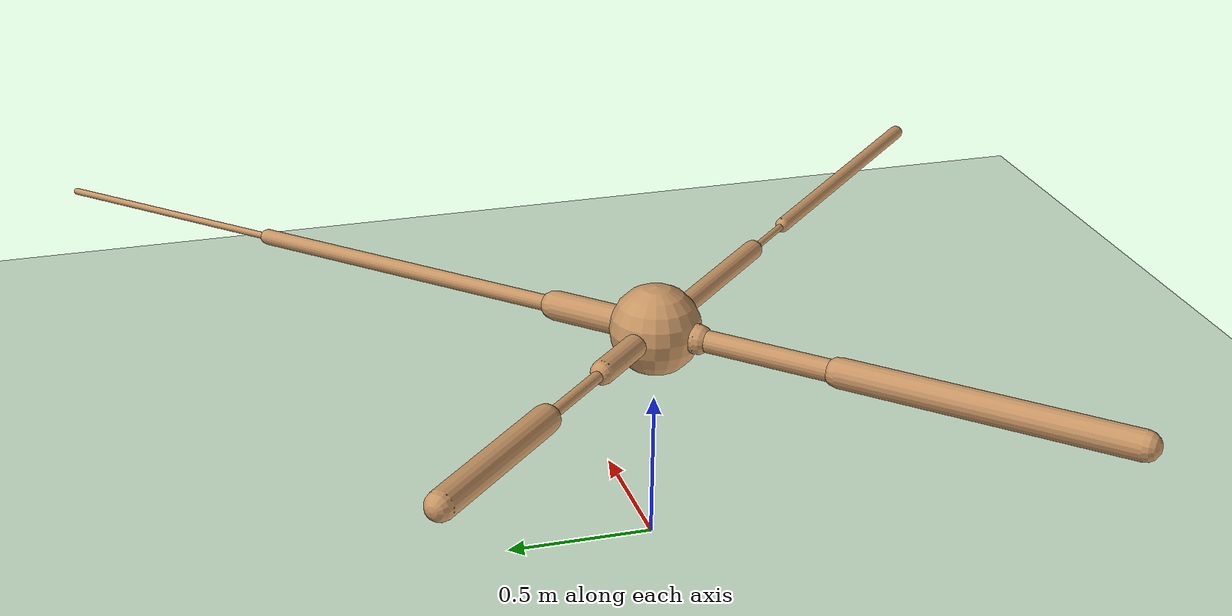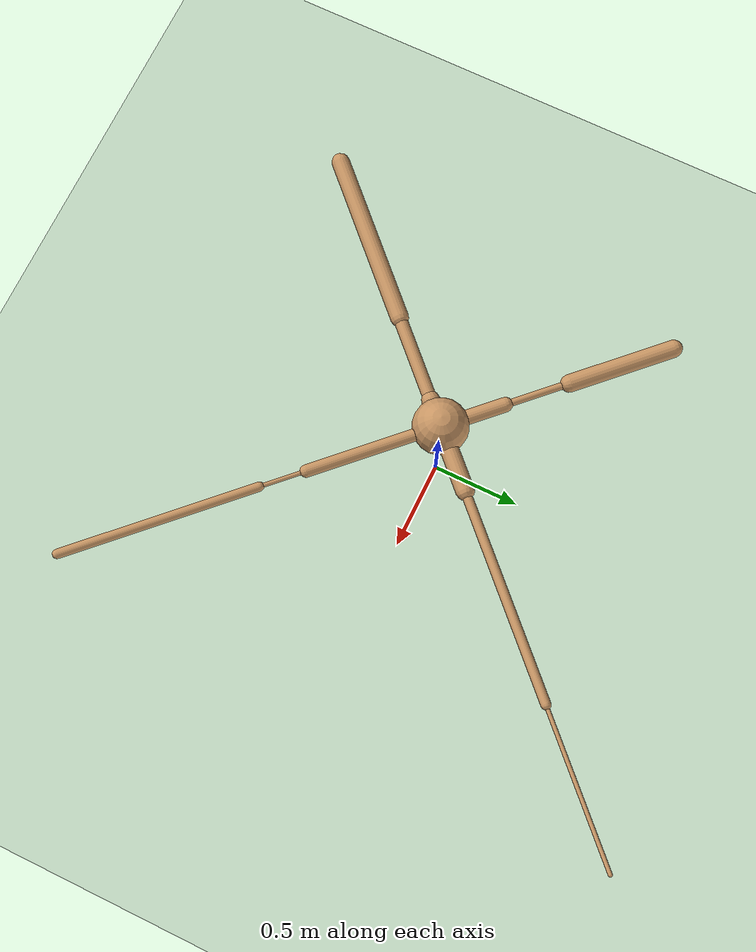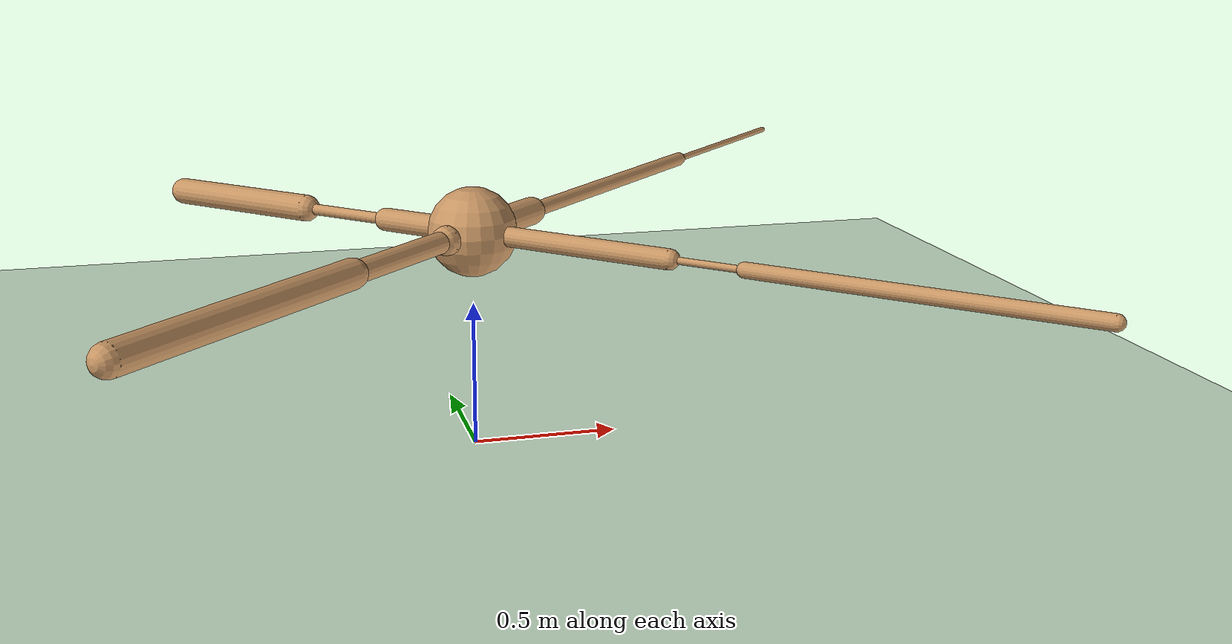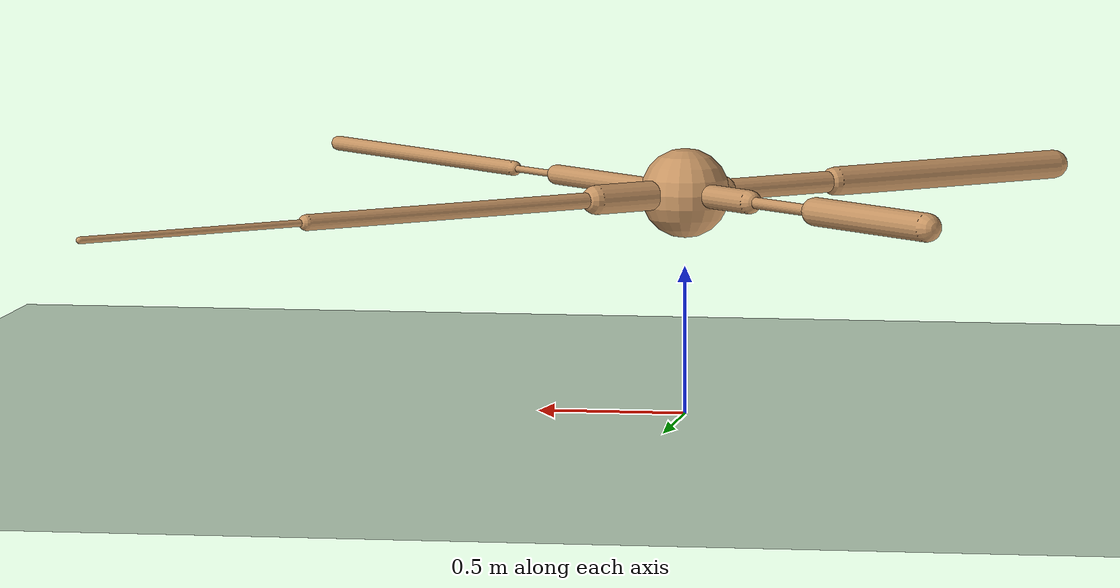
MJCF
<mujoco model="ant">
  <compiler angle="degree" coordinate="local" inertiafromgeom="true" />
  <option integrator="RK4" timestep="0.01" />
  <custom>
    <numeric data="0.0 0.0 0.55 1.0 0.0 0.0 0.0 0.0 1.0 0.0 -1.0 0.0 -1.0 0.0 1.0" name="init_qpos" />
  </custom>
  <default>
    <joint armature="1" damping="1" limited="true" />
    <geom conaffinity="0" condim="3" density="5.0" friction="1 0.5 0.5" margin="0.01" rgba="0.8 0.6 0.4 1" />
  </default>
  <asset>
    <texture builtin="gradient" height="100" rgb1="1 1 1" rgb2="0 0 0" type="skybox" width="100" />
    <texture builtin="flat" height="1278" mark="cross" markrgb="1 1 1" name="texgeom" random="0.01" rgb1="0.8 0.6 0.4" rgb2="0.8 0.6 0.4" type="cube" width="127" />
    <texture builtin="checker" height="100" name="texplane" rgb1="0 0 0" rgb2="0.8 0.8 0.8" type="2d" width="100" />
    <material name="MatPlane" reflectance="0.5" shininess="1" specular="1" texrepeat="60 60" texture="texplane" />
    <material name="geom" texture="texgeom" texuniform="true" />
  </asset>
  <worldbody>
    <light cutoff="100" diffuse="1 1 1" dir="-0 0 -1.3" directional="true" exponent="1" pos="0 0 1.3" specular=".1 .1 .1" />
    <geom conaffinity="1" condim="3" material="MatPlane" name="floor" pos="0 0 0" rgba="0.8 0.9 0.8 1" size="40 40 40" type="plane" />
    <body name="torso" pos="0 0 0.75">
      <camera name="track" mode="trackcom" pos="0 -11 5" xyaxes="1 0 0 0 0.5 1" />
      <geom name="torso_geom" pos="0 0 0" size="0.1512468159198761" type="sphere" />
      <joint armature="0" damping="0" limited="false" margin="0.01" name="root" pos="0 0 0" type="free" />
      <body name="front_left_leg" pos="0 0 0">
        <geom fromto="0 0 0 0.26257526874542236 0.26257526874542236 0" name="aux_1_geom" size="0.04958232864737511" type="capsule" />
        <body name="aux_1" pos="0.26257526874542236 0.26257526874542236 0">
          <joint axis="0 0 1" name="hip_1" pos="0.0 0.0 0.0" range="-30 30" type="hinge" />
          <geom fromto="0 0 0 0.8246934413909912 0.8246934413909912 0" name="left_leg_geom" size="0.02675565890967846" type="capsule" />
          <body name="left_leg_geom_aux" pos="0.8246934413909912 0.8246934413909912 0">
            <joint axis="-1 1 0" name="ankle_1" pos="0.0 0.0 0.0" range="30 70" type="hinge" />
            <geom fromto="0 0 0 0.6155356168746948 0.6155356168746948 0" name="left_ankle_geom" size="0.011454198509454727" type="capsule" />
          </body>
        </body>
      </body>
      <body name="front_right_leg" pos="0 0 0">
        <geom fromto="0 0 0 -0.2543047070503235 0.2543047070503235 0" name="aux_2_geom" size="0.03995088115334511" type="capsule" />
        <body name="aux_2" pos="-0.2543047070503235 0.2543047070503235 0">
          <joint axis="0 0 1" name="hip_2" pos="0.0 0.0 0.0" range="-30 30" type="hinge" />
          <geom fromto="0 0 0 -0.25284919142723083 0.25284919142723083 0" name="right_leg_geom" size="0.019404904916882515" type="capsule" />
          <body name="right_leg_geom_aux" pos="-0.25284919142723083 0.25284919142723083 0">
            <joint axis="1 1 0" name="ankle_2" pos="0.0 0.0 0.0" range="-70 -30" type="hinge" />
            <geom fromto="0 0 0 -0.4174725413322449 0.4174725413322449 0" name="right_ankle_geom" size="0.04745932295918465" type="capsule" />
          </body>
        </body>
      </body>
      <body name="back_leg" pos="0 0 0">
        <geom fromto="0 0 0 -0.10766991227865219 -0.10766991227865219 0" name="aux_3_geom" size="0.04968854784965515" type="capsule" />
        <body name="aux_3" pos="-0.10766991227865219 -0.10766991227865219 0">
          <joint axis="0 0 1" name="hip_3" pos="0.0 0.0 0.0" range="-30 30" type="hinge" />
          <geom fromto="0 0 0 -0.34480300545692444 -0.34480300545692444 0" name="back_leg_geom" size="0.036304667592048645" type="capsule" />
          <body name="back_leg_geom_aux" pos="-0.34480300545692444 -0.34480300545692444 0">
            <joint axis="-1 1 0" name="ankle_3" pos="0.0 0.0 0.0" range="-70 -30" type="hinge" />
            <geom fromto="0 0 0 -0.6819416284561157 -0.6819416284561157 0" name="third_ankle_geom" size="0.04914069548249245" type="capsule" />
          </body>
        </body>
      </body>
      <body name="right_back_leg" pos="0 0 0">
        <geom fromto="0 0 0 0.5218597650527954 -0.5218597650527954 0" name="aux_4_geom" size="0.03394601494073868" type="capsule" />
        <body name="aux_4" pos="0.5218597650527954 -0.5218597650527954 0">
          <joint axis="0 0 1" name="hip_4" pos="0.0 0.0 0.0" range="-30 30" type="hinge" />
          <geom fromto="0 0 0 0.17986759543418884 -0.17986759543418884 0" name="rightback_leg_geom" size="0.01171827595680952" type="capsule" />
          <body name="rightback_leg_geom_aux" pos="0.17986759543418884 -0.17986759543418884 0">
            <joint axis="1 1 0" name="ankle_4" pos="0.0 0.0 0.0" range="30 70" type="hinge" />
            <geom fromto="0 0 0 0.7657060027122498 -0.7657060027122498 0" name="fourth_ankle_geom" size="0.02536742575466633" type="capsule" />
          </body>
        </body>
      </body>
    </body>
  </worldbody>
  <actuator>
    <motor ctrllimited="true" ctrlrange="-1.0 1.0" joint="hip_4" gear="150" />
    <motor ctrllimited="true" ctrlrange="-1.0 1.0" joint="ankle_4" gear="150" />
    <motor ctrllimited="true" ctrlrange="-1.0 1.0" joint="hip_1" gear="150" />
    <motor ctrllimited="true" ctrlrange="-1.0 1.0" joint="ankle_1" gear="150" />
    <motor ctrllimited="true" ctrlrange="-1.0 1.0" joint="hip_2" gear="150" />
    <motor ctrllimited="true" ctrlrange="-1.0 1.0" joint="ankle_2" gear="150" />
    <motor ctrllimited="true" ctrlrange="-1.0 1.0" joint="hip_3" gear="150" />
    <motor ctrllimited="true" ctrlrange="-1.0 1.0" joint="ankle_3" gear="150" />
  </actuator>
</mujoco>
